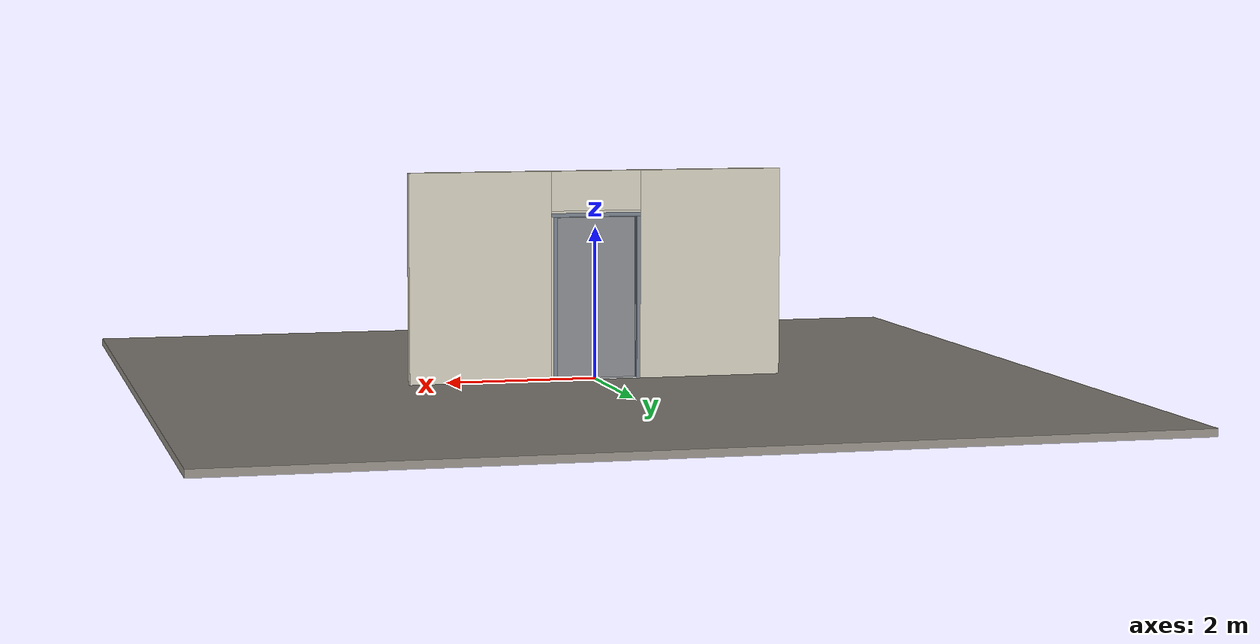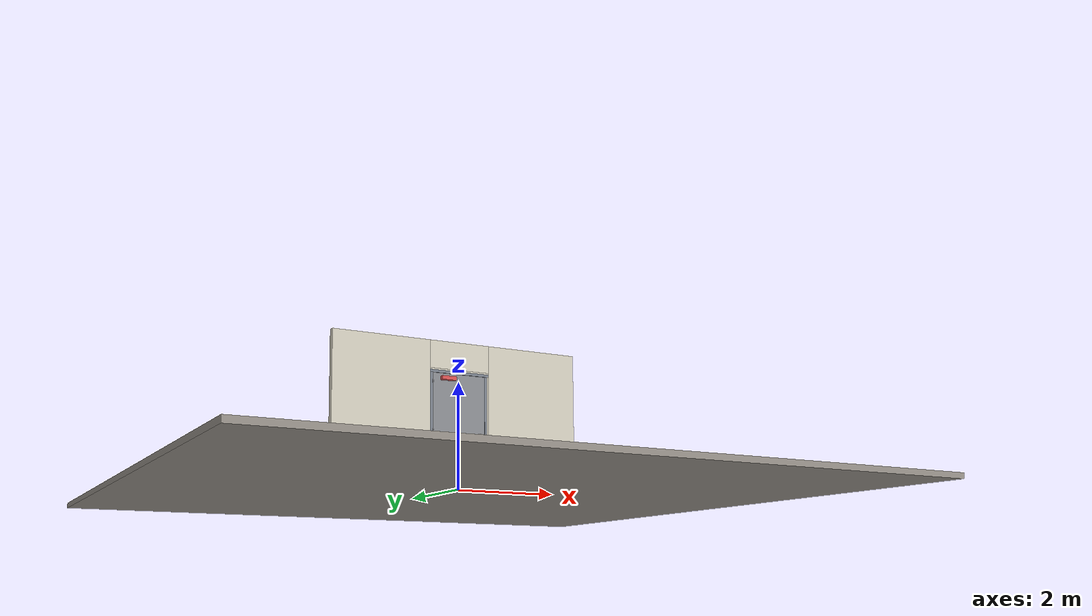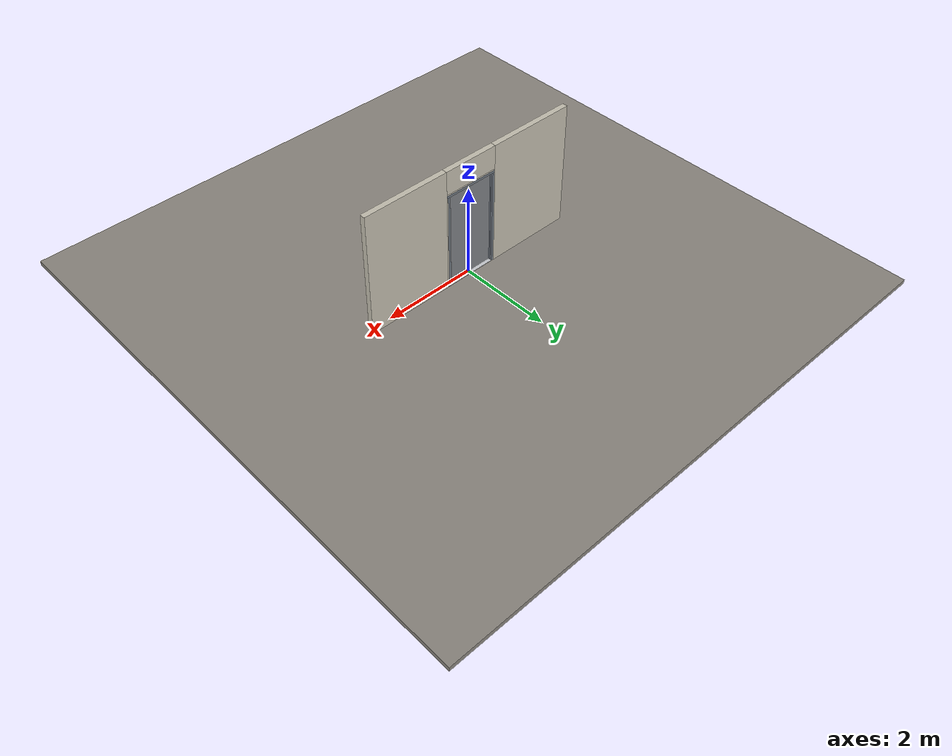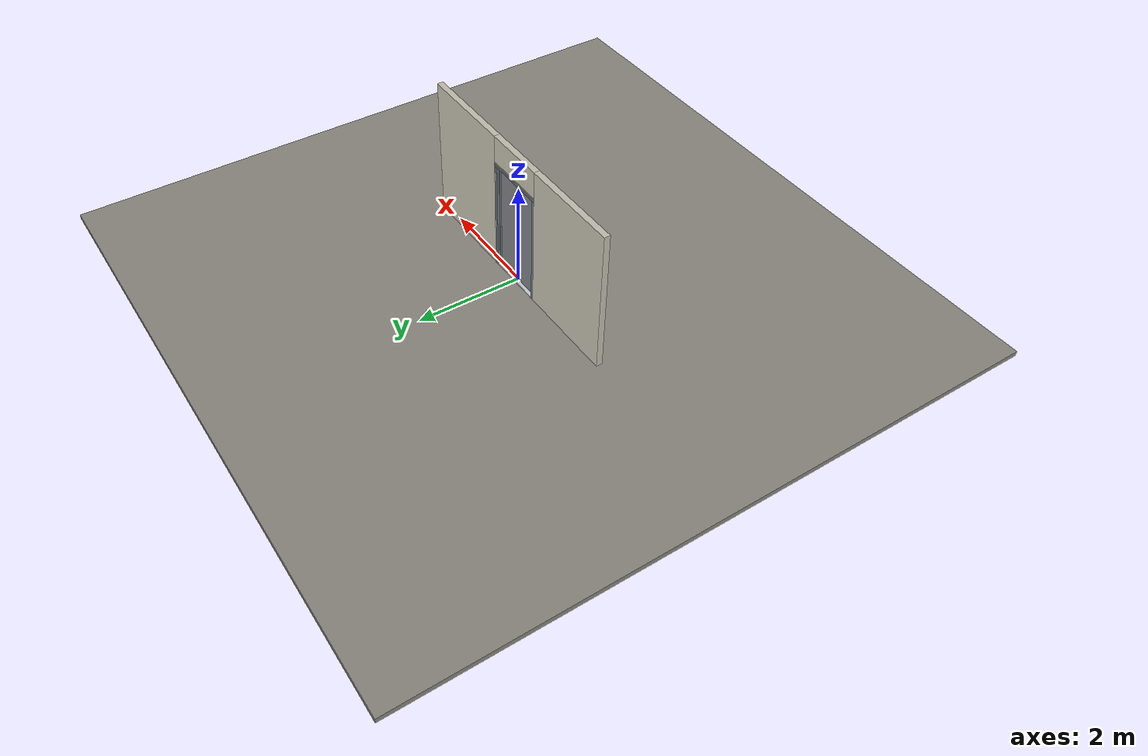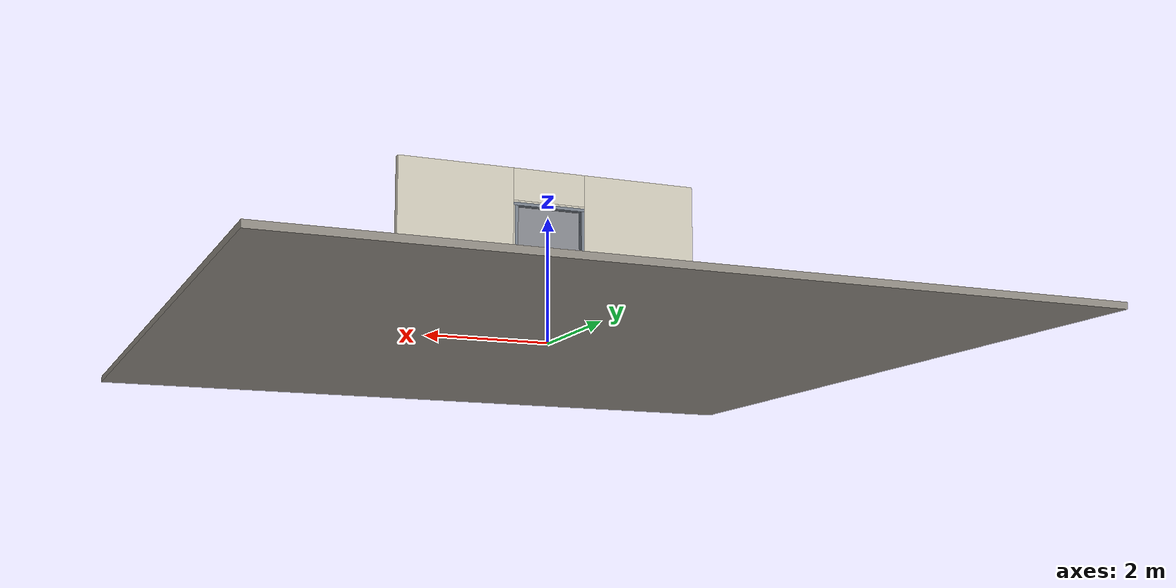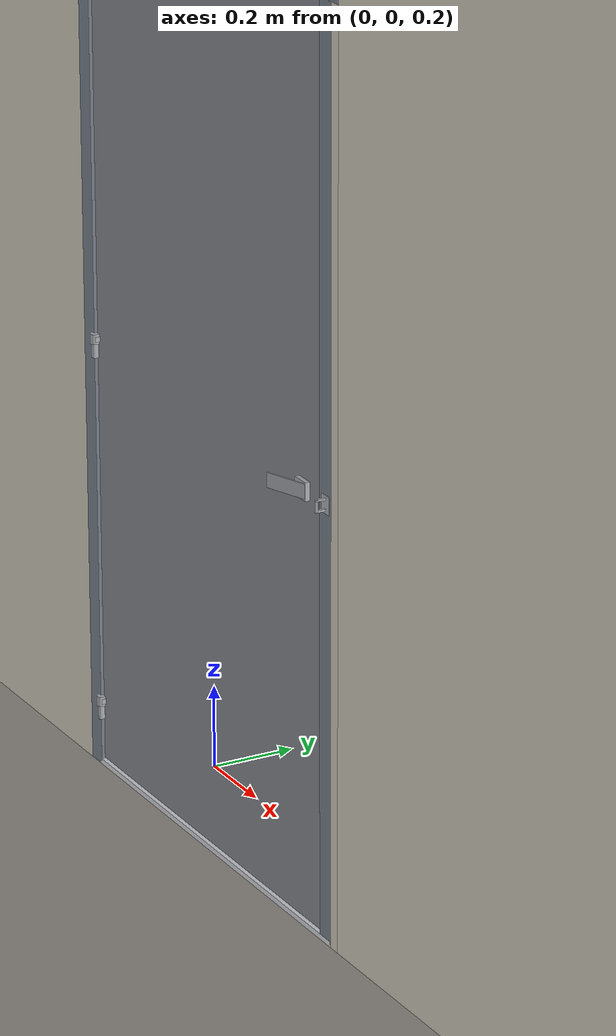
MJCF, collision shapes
<?xml version="1.0" ?>
<mujoco model="db0374_swing_single_simple">
  <compiler angle="radian" meshdir="../../hardware" texturedir="../../textures" autolimits="true" inertiafromgeom="false"/>
  <option timestep="0.002" integrator="implicitfast" cone="elliptic" impratio="10" noslip_iterations="3">
    <flag multiccd="enable"/>
  </option>
  <size memory="16M"/>
  <default>
    <geom condim="4" solref="0.005 1" solimp="0.95 0.99 0.001"/>
    <joint solreflimit="0.005 1" solimplimit="0.95 0.99 0.001"/>
    <tendon solreflimit="0.005 1"/>
    <equality solref="0.002 1"/>
  </default>
  <visual>
    <headlight ambient="0.4 0.4 0.4" diffuse="0.7 0.7 0.7" specular="0.2 0.2 0.2"/>
    <quality shadowsize="4096"/>
    <map znear="0.01" zfar="60"/>
  </visual>
  <asset>
    <mesh name="closer_body_fdc4667657" file="closer_body_fdc4667657.obj"/>
    <mesh name="strap_hinge_78d1bbb966" file="strap_hinge_78d1bbb966.obj"/>
    <material name="mat_floor" rgba="0.55 0.53 0.5 1" specular="0.2" shininess="0.15" reflectance="0"/>
    <material name="mat_wall" rgba="0.78 0.76 0.7 1" specular="0.2" shininess="0.1" reflectance="0"/>
    <material name="mat_leaf" rgba="0.5 0.51 0.53 1" specular="0.2" shininess="0.46" reflectance="0"/>
    <material name="mat_hinge" rgba="0.65 0.66 0.68 1" specular="0.74" shininess="0.5" reflectance="0.36"/>
    <material name="mat_op_steel_galvanized" rgba="0.65 0.66 0.68 1" specular="0.74" shininess="0.5" reflectance="0.36"/>
    <material name="mat_padlock" rgba="0.85 0.66 0.3 1" specular="0.8" shininess="0.75" reflectance="0.4"/>
    <material name="mat_frame" rgba="0.45 0.48 0.52 1" specular="0.32" shininess="0.6" reflectance="0.08"/>
    <material name="mat_threshold" rgba="0.8 0.81 0.83 1" specular="0.8" shininess="0.6" reflectance="0.4"/>
    <material name="mat_closer" rgba="0.22 0.17 0.13 1" specular="0.8" shininess="0.6" reflectance="0.4"/>
    <material name="mat_vent" rgba="0.8 0.81 0.83 1" specular="0.8" shininess="0.6" reflectance="0.4"/>
    <material name="mat_placard" rgba="0.95 0.75 0.05 1" specular="0.2" shininess="0.5" reflectance="0"/>
    <texture name="skybox" type="skybox" builtin="gradient" rgb1="0.6 0.7 0.85" rgb2="0.9 0.92 0.95" width="256" height="256"/>
  </asset>
  <worldbody>
    <light name="sun" pos="1.5 -2.5 4" dir="-0.3 0.5 -0.8" directional="true" diffuse="0.8 0.8 0.8" specular="0.3 0.3 0.3" castshadow="true"/>
    <light name="fill" pos="-1.5 2.5 3" dir="0.3 -0.5 -0.7" directional="true" diffuse="0.35 0.35 0.4" castshadow="false"/>
    <camera name="robot_view" pos="0 -2.604812 1.812087" xyaxes="1 0 0 0 0.26963 0.962964" fovy="52"/>
    <camera name="far_view" pos="0 2.670812 1.812087" xyaxes="-1 0 0 0 -0.26963 0.962964" fovy="52"/>
    <camera name="iso" pos="2.004737 -2.182762 2.234138" xyaxes="0.741536 0.670913 0 -0.242917 0.268487 0.932151" fovy="46"/>
    <camera name="detail_handle" pos="0.747 -0.8385 1.32" xyaxes="0.97561 0.219512 0 -0.070934 0.315262 0.94635" fovy="38"/>
    <geom name="floor" type="box" size="6 6 0.05" pos="0 0 -0.05" material="mat_floor" group="0" contype="1" conaffinity="1" friction="0.8 0.005 0.0001" density="2400"/>
    <geom name="wall_left" type="box" size="0.9565 0.0575 1.3735" pos="-1.5435 0.033 1.3735" material="mat_wall" group="0" contype="1" conaffinity="1" friction="0.6 0.005 0.0001" density="800"/>
    <geom name="wall_right" type="box" size="0.9415 0.0575 1.3735" pos="1.5585 0.033 1.3735" material="mat_wall" group="0" contype="1" conaffinity="1" friction="0.6 0.005 0.0001" density="800"/>
    <geom name="wall_header" type="box" size="0.602 0.0575 0.26" pos="0.015 0.033 2.487" material="mat_wall" group="0" contype="1" conaffinity="1" friction="0.6 0.005 0.0001" density="800"/>
    <geom name="hinge_pintle_0" type="cylinder" size="0.008 0.02" pos="-0.534 -0.0245 0.141" material="mat_hinge" group="1" contype="0" conaffinity="0" density="7850"/>
    <geom name="hinge_pintle_1" type="cylinder" size="0.008 0.02" pos="-0.534 -0.0245 1.054" material="mat_hinge" group="1" contype="0" conaffinity="0" density="7850"/>
    <geom name="hinge_pintle_2" type="cylinder" size="0.008 0.02" pos="-0.534 -0.0245 1.967" material="mat_hinge" group="1" contype="0" conaffinity="0" density="7850"/>
    <geom name="leaf_staple_leg_n" type="box" size="0.003 0.0025 0.013" pos="0.565 -0.0375 1.0275" quat="0.707107 0.707107 0 0" material="mat_op_steel_galvanized" group="0" contype="1" conaffinity="1" friction="0.6 0.005 0.0001" density="7800"/>
    <geom name="leaf_staple_leg_p" type="box" size="0.003 0.0025 0.013" pos="0.565 -0.0375 1.0525" quat="0.707107 0.707107 0 0" material="mat_op_steel_galvanized" group="0" contype="1" conaffinity="1" friction="0.6 0.005 0.0001" density="7800"/>
    <geom name="leaf_staple_bridge" type="box" size="0.003 0.015 0.0025" pos="0.565 -0.048 1.04" quat="0.707107 0.707107 0 0" material="mat_op_steel_galvanized" group="0" contype="1" conaffinity="1" friction="0.6 0.005 0.0001" density="7800"/>
    <geom name="leaf_staple_base" type="box" size="0.016 0.021 0.001" pos="0.565 -0.0255 1.04" quat="0.707107 0.707107 0 0" material="mat_op_steel_galvanized" group="1" contype="0" conaffinity="0" density="7800"/>
    <geom name="jamb_hinge" type="box" size="0.025 0.0575 1.0735" pos="-0.562 0.033 1.0735" material="mat_frame" group="0" contype="1" conaffinity="1" friction="0.6 0.005 0.0001" density="300"/>
    <geom name="jamb_strike" type="box" size="0.025 0.0575 1.0735" pos="0.562 0.033 1.0735" material="mat_frame" group="0" contype="1" conaffinity="1" friction="0.6 0.005 0.0001" density="300"/>
    <geom name="stud_strike" type="box" size="0.015 0.0575 1.0735" pos="0.602 0.033 1.0735" material="mat_wall" group="0" contype="1" conaffinity="1" friction="0.6 0.005 0.0001" density="500"/>
    <geom name="jamb_head" type="box" size="0.602 0.0575 0.025" pos="0.015 0.033 2.172" material="mat_frame" group="0" contype="1" conaffinity="1" friction="0.6 0.005 0.0001" density="300"/>
    <geom name="head_stud" type="box" size="0.602 0.0575 0.015" pos="0.015 0.033 2.212" material="mat_wall" group="0" contype="1" conaffinity="1" friction="0.6 0.005 0.0001" density="500"/>
    <geom name="stop_hinge" type="box" size="0.0055 0.016 1.0735" pos="-0.5315 0.034 1.0735" material="mat_frame" group="0" contype="1" conaffinity="1" friction="0.6 0.005 0.0001" density="300"/>
    <geom name="stop_strike" type="box" size="0.0055 0.016 1.0735" pos="0.5315 0.034 1.0735" material="mat_frame" group="0" contype="1" conaffinity="1" friction="0.6 0.005 0.0001" density="300"/>
    <geom name="stop_head" type="box" size="0.537 0.016 0.0055" pos="0 0.034 2.1415" material="mat_frame" group="0" contype="1" conaffinity="1" friction="0.6 0.005 0.0001" density="300"/>
    <geom name="threshold" type="box" size="0.587 0.0575 0.0065" pos="0 0.033 0.0065" material="mat_threshold" group="0" contype="1" conaffinity="1" friction="0.5 0.005 0.0001" density="2700"/>
    <geom name="hinge_pintle_0_strap_0" type="box" size="0.0064 0.01775 0.016" pos="-0.534 0.00075 0.141" material="mat_hinge" group="1" contype="0" conaffinity="0" density="7850"/>
    <geom name="hinge_pintle_1_strap_0" type="box" size="0.0064 0.01775 0.016" pos="-0.534 0.00075 1.054" material="mat_hinge" group="1" contype="0" conaffinity="0" density="7850"/>
    <geom name="hinge_pintle_2_strap_0" type="box" size="0.0064 0.01775 0.016" pos="-0.534 0.00075 1.967" material="mat_hinge" group="1" contype="0" conaffinity="0" density="7850"/>
    <site name="approach_point" pos="0 -1.5 0" quat="1 0 0 0" size="0.05" rgba="0.2 0.9 0.2 0.5" group="4"/>
    <site name="goal_point" pos="0 1.5 0" quat="1 0 0 0" size="0.05" rgba="0.2 0.9 0.2 0.5" group="4"/>
    <site name="door_plane_center" pos="0 0 1.0735" quat="1 0 0 0" size="0.02" rgba="0.2 0.9 0.2 0.5" group="4"/>
    <body name="leaf" pos="-0.537 0 0">
      <inertial pos="0.471736 -0.015011 1.281335" mass="59.021646" quat="0.522268 0.522785 0.487219 -0.465349" diaginertia="5.00741756 27.328472933 32.252151964"/>
      <joint name="leaf_hinge" type="hinge" axis="0 0 -1" pos="0.003 -0.0245 0" limited="true" range="0 1.570796" damping="12.49954" frictionloss="6.260494" stiffness="14.183889" springref="-2.144687" armature="0.02"/>
      <geom name="leaf_slab" type="box" size="0.5335 0.0175 1.063" pos="0.5365 0 1.08" material="mat_leaf" group="0" contype="1" conaffinity="1" friction="0.4 0.005 0.0001" density="1"/>
      <geom name="hinge_strap_0" type="mesh" mesh="strap_hinge_78d1bbb966" pos="0.003 -0.0205 0.167" material="mat_hinge" group="1" contype="0" conaffinity="0" density="7850"/>
      <geom name="hinge_strap_eye_0" type="cylinder" size="0.011 0.012" pos="0.003 -0.0245 0.167" material="mat_hinge" group="1" contype="0" conaffinity="0" density="7850"/>
      <geom name="hinge_strap_neck_0" type="box" size="0.012 0.006 0.006" pos="0.003 -0.0225 0.167" material="mat_hinge" group="1" contype="0" conaffinity="0" density="7850"/>
      <geom name="hinge_strap_1" type="mesh" mesh="strap_hinge_78d1bbb966" pos="0.003 -0.0205 1.08" material="mat_hinge" group="1" contype="0" conaffinity="0" density="7850"/>
      <geom name="hinge_strap_eye_1" type="cylinder" size="0.011 0.012" pos="0.003 -0.0245 1.08" material="mat_hinge" group="1" contype="0" conaffinity="0" density="7850"/>
      <geom name="hinge_strap_neck_1" type="box" size="0.012 0.006 0.006" pos="0.003 -0.0225 1.08" material="mat_hinge" group="1" contype="0" conaffinity="0" density="7850"/>
      <geom name="hinge_strap_2" type="mesh" mesh="strap_hinge_78d1bbb966" pos="0.003 -0.0205 1.993" material="mat_hinge" group="1" contype="0" conaffinity="0" density="7850"/>
      <geom name="hinge_strap_eye_2" type="cylinder" size="0.011 0.012" pos="0.003 -0.0245 1.993" material="mat_hinge" group="1" contype="0" conaffinity="0" density="7850"/>
      <geom name="hinge_strap_neck_2" type="box" size="0.012 0.006 0.006" pos="0.003 -0.0225 1.993" material="mat_hinge" group="1" contype="0" conaffinity="0" density="7850"/>
      <geom name="leaf_hasp_plate" type="box" size="0.024 0.0215 0.0055" pos="0.995 -0.023 1.04" quat="0.707107 0.707107 0 0" material="mat_op_steel_galvanized" group="1" contype="0" conaffinity="0" density="7800"/>
      <geom name="closer_body" type="mesh" mesh="closer_body_fdc4667657" pos="0.3 -0.0175 2.046" quat="0.707107 0.707107 0 0" material="mat_closer" group="1" contype="0" conaffinity="0" density="2000"/>
      <geom name="closer_body_col" type="box" size="0.145 0.05 0.035" pos="0.3 -0.0675 2.046" material="mat_closer" group="3" contype="1" conaffinity="1" rgba="0.8 0.3 0.3 0.25" friction="0.6 0.005 0.0001" density="2000"/>
      <site name="leaf_edge_mid" pos="1.07 0 1.063" quat="1 0 0 0" size="0.02" rgba="0.2 0.9 0.2 0.5" group="4"/>
      <body name="leaf_hasp" pos="1.015 -0.0285 1.04">
        <inertial pos="-0.051854 -0.016844 0" mass="0.089271" quat="0.696818 -0.696818 -0.120185 0.120185" diaginertia="0.00000918 0.000088453 0.000097499"/>
        <joint name="leaf_hasp_hinge" type="hinge" axis="0 0 -1" limited="true" range="0 2.9" damping="0.02" frictionloss="0.05" armature="0.005" ref="2.8"/>
        <geom name="leaf_hasp_strap" type="box" size="0.0545 0.0175 0.0015" pos="-0.051854 -0.016844 0" quat="0.120185 0.120185 -0.696818 -0.696818" material="mat_op_steel_galvanized" group="0" contype="1" conaffinity="1" friction="0.6 0.005 0.0001" density="7800"/>
        <site name="leaf_hasp_grip" pos="-0.087208 -0.020392 0" quat="0.169967 0 0 -0.98545" size="0.01" rgba="0.2 0.9 0.2 0.5" group="4"/>
      </body>
    </body>
  </worldbody>
  <sensor>
    <jointpos name="leaf_hinge_pos" joint="leaf_hinge"/>
    <jointvel name="leaf_hinge_vel" joint="leaf_hinge"/>
    <jointpos name="leaf_hasp_hinge_pos" joint="leaf_hasp_hinge"/>
    <jointvel name="leaf_hasp_hinge_vel" joint="leaf_hasp_hinge"/>
  </sensor>
</mujoco>
